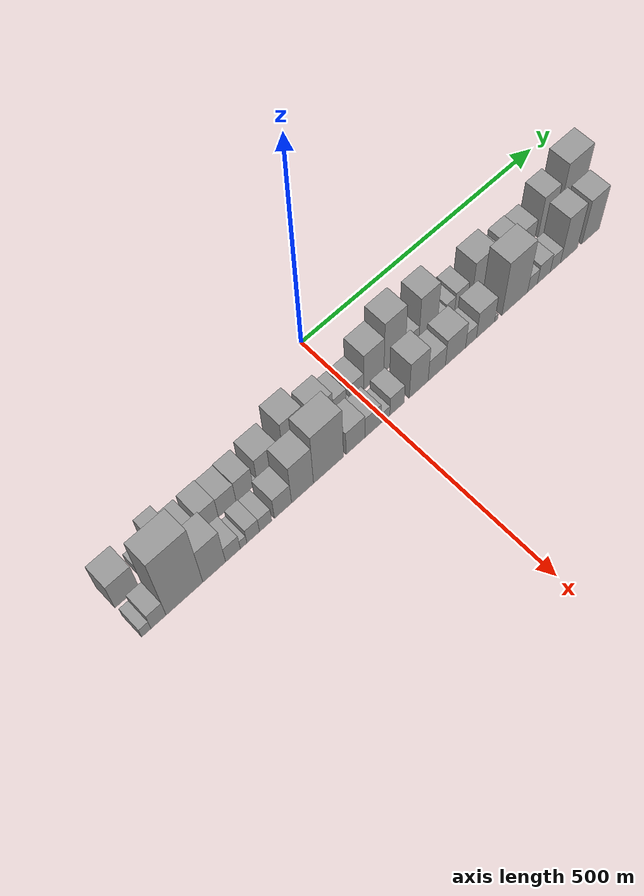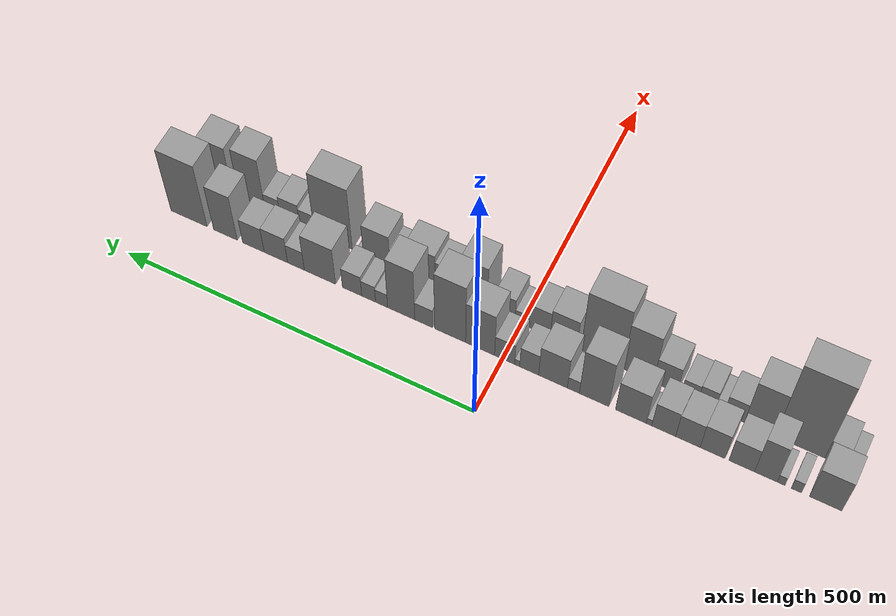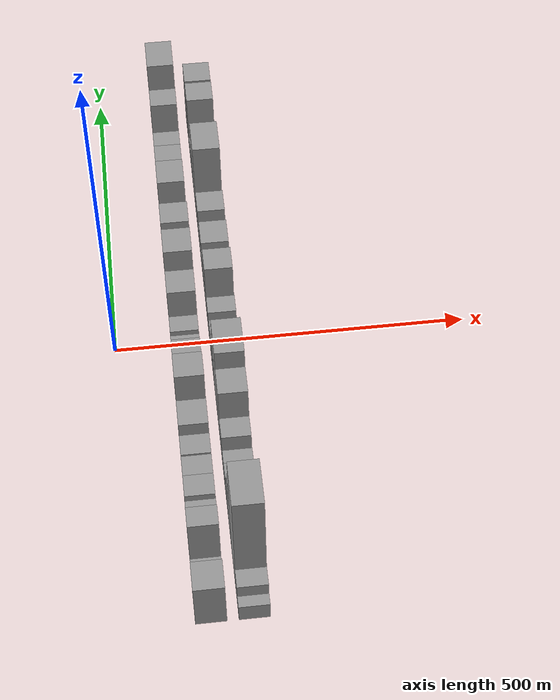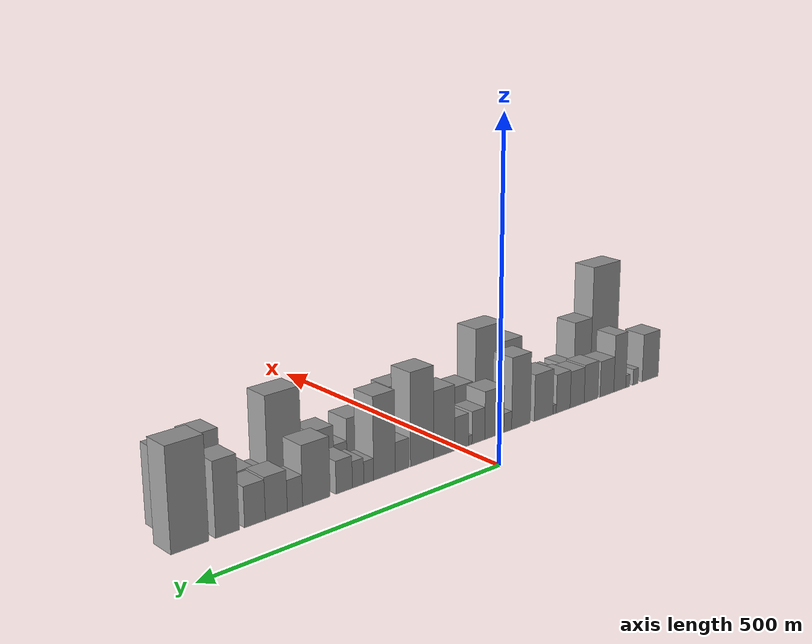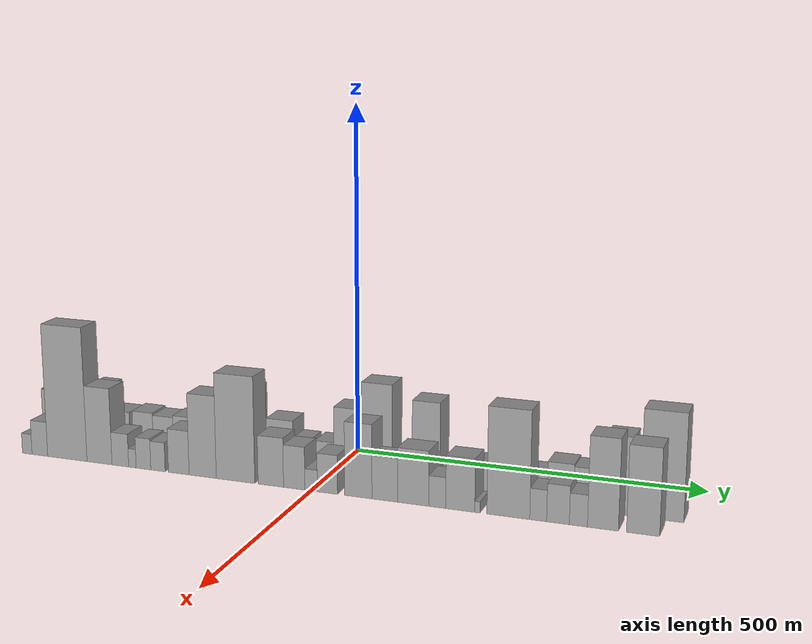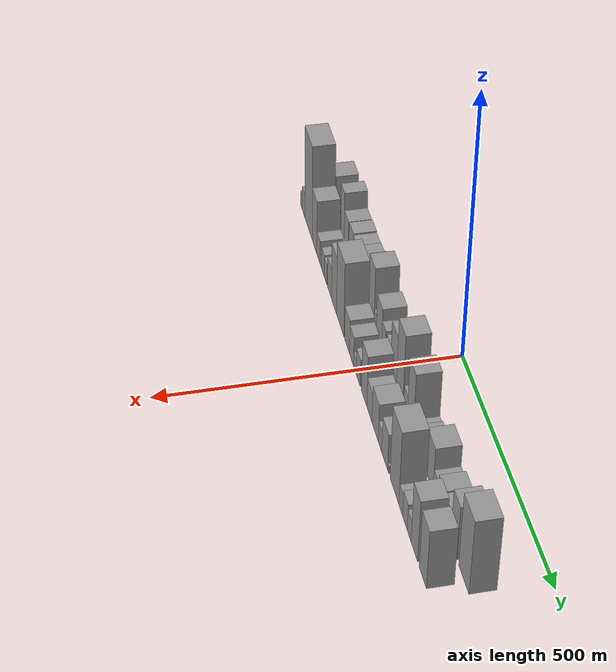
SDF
<sdf version="1.6">
 <world name="default">
  <scene>
   <sky><clouds><speed>12</speed></clouds></sky>
   <ambient>0.4 0.4 0.4 1</ambient>
   <background>0.7 0.7 0.7 1</background>
   <shadows>1</shadows>
  </scene>
  <gravity>0 0 -9.8066</gravity>
  <magnetic_field>6e-06 2.3e-05 -4.2e-05</magnetic_field>
  <physics default="0" name="default_physics" type="ode">
   <ode>
    <solver>
     <type>quick</type>
     <iters>10</iters>
     <sor>1.0</sor>
     <use_dynamic_moi_rescaling>0</use_dynamic_moi_rescaling>
    </solver>
    <constraints>
     <cfm>0</cfm>
     <erp>0.2</erp>
     <contact_max_correcting_vel>100</contact_max_correcting_vel>
     <contact_surface_layer>0.001</contact_surface_layer>
    </constraints>
   </ode>
   <max_step_size>0.004</max_step_size>
   <real_time_factor>1</real_time_factor>
   <real_time_update_rate>250</real_time_update_rate>
  </physics>
  <light name="sun" type="directional">
   <pose>0 0 10 0 0 0</pose>
   <diffuse>0.8 0.8 0.8 1</diffuse>
   <specular>0.2 0.2 0.2 1</specular>
   <attenuation>
    <range>1000</range>
    <constant>0.9</constant>
    <linear>0.01</linear>
    <quadratic>0.001</quadratic>
   </attenuation>
   <direction>-0.5 0.1 -0.9</direction>
  </light>
  <model name="building_1">
   <static>1</static>
   <pose>100.0000 -429.3732 0 0.000000 0.000000 0.000000</pose>
   <link name="link">
    <pose>0 0 40.50 0 0 0</pose>
    <collision name="collision"><geometry><box><size>40.0000 41.2535 81.0000</size></box></geometry></collision>
    <visual name="visual">
     <cast_shadows>0</cast_shadows>
     <geometry><box><size>40.0000 41.2535 81.0000</size></box></geometry>
     <material>
      <script>
       <uri>model://grey_wall/materials/scripts</uri>
       <uri>model://grey_wall/materials/textures</uri>
       <name>vrc/grey_wall</name>
      </script>
     </material>
    </visual>
   </link>
  </model>
  <model name="building_2">
   <static>1</static>
   <pose>100.0000 -392.1876 0 0.000000 0.000000 0.000000</pose>
   <link name="link">
    <pose>0 0 13.50 0 0 0</pose>
    <collision name="collision"><geometry><box><size>40.0000 13.1177 27.0000</size></box></geometry></collision>
    <visual name="visual">
     <cast_shadows>0</cast_shadows>
     <geometry><box><size>40.0000 13.1177 27.0000</size></box></geometry>
     <material>
      <script>
       <uri>model://grey_wall/materials/scripts</uri>
       <uri>model://grey_wall/materials/textures</uri>
       <name>vrc/grey_wall</name>
      </script>
     </material>
    </visual>
   </link>
  </model>
  <model name="building_3">
   <static>1</static>
   <pose>100.0000 -372.6720 0 0.000000 0.000000 0.000000</pose>
   <link name="link">
    <pose>0 0 10.50 0 0 0</pose>
    <collision name="collision"><geometry><box><size>40.0000 9.9136 21.0000</size></box></geometry></collision>
    <visual name="visual">
     <cast_shadows>0</cast_shadows>
     <geometry><box><size>40.0000 9.9136 21.0000</size></box></geometry>
     <material>
      <script>
       <uri>model://grey_wall/materials/scripts</uri>
       <uri>model://grey_wall/materials/textures</uri>
       <name>vrc/grey_wall</name>
      </script>
     </material>
    </visual>
   </link>
  </model>
  <model name="building_4">
   <static>1</static>
   <pose>100.0000 -352.9878 0 0.000000 0.000000 0.000000</pose>
   <link name="link">
    <pose>0 0 48.00 0 0 0</pose>
    <collision name="collision"><geometry><box><size>40.0000 29.4547 96.0000</size></box></geometry></collision>
    <visual name="visual">
     <cast_shadows>0</cast_shadows>
     <geometry><box><size>40.0000 29.4547 96.0000</size></box></geometry>
     <material>
      <script>
       <uri>model://grey_wall/materials/scripts</uri>
       <uri>model://grey_wall/materials/textures</uri>
       <name>vrc/grey_wall</name>
      </script>
     </material>
    </visual>
   </link>
  </model>
  <model name="building_5">
   <static>1</static>
   <pose>100.0000 -321.6236 0 0.000000 0.000000 0.000000</pose>
   <link name="link">
    <pose>0 0 30.00 0 0 0</pose>
    <collision name="collision"><geometry><box><size>40.0000 33.2737 60.0000</size></box></geometry></collision>
    <visual name="visual">
     <cast_shadows>0</cast_shadows>
     <geometry><box><size>40.0000 33.2737 60.0000</size></box></geometry>
     <material>
      <script>
       <uri>model://grey_wall/materials/scripts</uri>
       <uri>model://grey_wall/materials/textures</uri>
       <name>vrc/grey_wall</name>
      </script>
     </material>
    </visual>
   </link>
  </model>
  <model name="building_6">
   <static>1</static>
   <pose>100.0000 -283.7098 0 0.000000 0.000000 0.000000</pose>
   <link name="link">
    <pose>0 0 31.50 0 0 0</pose>
    <collision name="collision"><geometry><box><size>40.0000 32.5539 63.0000</size></box></geometry></collision>
    <visual name="visual">
     <cast_shadows>0</cast_shadows>
     <geometry><box><size>40.0000 32.5539 63.0000</size></box></geometry>
     <material>
      <script>
       <uri>model://grey_wall/materials/scripts</uri>
       <uri>model://grey_wall/materials/textures</uri>
       <name>vrc/grey_wall</name>
      </script>
     </material>
    </visual>
   </link>
  </model>
  <model name="building_7">
   <static>1</static>
   <pose>100.0000 -251.2502 0 0.000000 0.000000 0.000000</pose>
   <link name="link">
    <pose>0 0 30.00 0 0 0</pose>
    <collision name="collision"><geometry><box><size>40.0000 32.3653 60.0000</size></box></geometry></collision>
    <visual name="visual">
     <cast_shadows>0</cast_shadows>
     <geometry><box><size>40.0000 32.3653 60.0000</size></box></geometry>
     <material>
      <script>
       <uri>model://grey_wall/materials/scripts</uri>
       <uri>model://grey_wall/materials/textures</uri>
       <name>vrc/grey_wall</name>
      </script>
     </material>
    </visual>
   </link>
  </model>
  <model name="building_8">
   <static>1</static>
   <pose>100.0000 -219.2481 0 0.000000 0.000000 0.000000</pose>
   <link name="link">
    <pose>0 0 31.50 0 0 0</pose>
    <collision name="collision"><geometry><box><size>40.0000 31.6390 63.0000</size></box></geometry></collision>
    <visual name="visual">
     <cast_shadows>0</cast_shadows>
     <geometry><box><size>40.0000 31.6390 63.0000</size></box></geometry>
     <material>
      <script>
       <uri>model://grey_wall/materials/scripts</uri>
       <uri>model://grey_wall/materials/textures</uri>
       <name>vrc/grey_wall</name>
      </script>
     </material>
    </visual>
   </link>
  </model>
  <model name="building_9">
   <static>1</static>
   <pose>100.0000 -199.6931 0 0.000000 0.000000 0.000000</pose>
   <link name="link">
    <pose>0 0 7.50 0 0 0</pose>
    <collision name="collision"><geometry><box><size>40.0000 7.4711 15.0000</size></box></geometry></collision>
    <visual name="visual">
     <cast_shadows>0</cast_shadows>
     <geometry><box><size>40.0000 7.4711 15.0000</size></box></geometry>
     <material>
      <script>
       <uri>model://grey_wall/materials/scripts</uri>
       <uri>model://grey_wall/materials/textures</uri>
       <name>vrc/grey_wall</name>
      </script>
     </material>
    </visual>
   </link>
  </model>
  <model name="building_10">
   <static>1</static>
   <pose>100.0000 -175.4434 0 0.000000 0.000000 0.000000</pose>
   <link name="link">
    <pose>0 0 37.50 0 0 0</pose>
    <collision name="collision"><geometry><box><size>40.0000 41.0281 75.0000</size></box></geometry></collision>
    <visual name="visual">
     <cast_shadows>0</cast_shadows>
     <geometry><box><size>40.0000 41.0281 75.0000</size></box></geometry>
     <material>
      <script>
       <uri>model://grey_wall/materials/scripts</uri>
       <uri>model://grey_wall/materials/textures</uri>
       <name>vrc/grey_wall</name>
      </script>
     </material>
    </visual>
   </link>
  </model>
  <model name="building_11">
   <static>1</static>
   <pose>100.0000 -125.9184 0 0.000000 0.000000 0.000000</pose>
   <link name="link">
    <pose>0 0 57.00 0 0 0</pose>
    <collision name="collision"><geometry><box><size>40.0000 40.0219 114.0000</size></box></geometry></collision>
    <visual name="visual">
     <cast_shadows>0</cast_shadows>
     <geometry><box><size>40.0000 40.0219 114.0000</size></box></geometry>
     <material>
      <script>
       <uri>model://grey_wall/materials/scripts</uri>
       <uri>model://grey_wall/materials/textures</uri>
       <name>vrc/grey_wall</name>
      </script>
     </material>
    </visual>
   </link>
  </model>
  <model name="building_12">
   <static>1</static>
   <pose>100.0000 -97.7523 0 0.000000 0.000000 0.000000</pose>
   <link name="link">
    <pose>0 0 15.00 0 0 0</pose>
    <collision name="collision"><geometry><box><size>40.0000 16.3104 30.0000</size></box></geometry></collision>
    <visual name="visual">
     <cast_shadows>0</cast_shadows>
     <geometry><box><size>40.0000 16.3104 30.0000</size></box></geometry>
     <material>
      <script>
       <uri>model://grey_wall/materials/scripts</uri>
       <uri>model://grey_wall/materials/textures</uri>
       <name>vrc/grey_wall</name>
      </script>
     </material>
    </visual>
   </link>
  </model>
  <model name="building_13">
   <static>1</static>
   <pose>100.0000 -69.8702 0 0.000000 0.000000 0.000000</pose>
   <link name="link">
    <pose>0 0 37.50 0 0 0</pose>
    <collision name="collision"><geometry><box><size>40.0000 39.4537 75.0000</size></box></geometry></collision>
    <visual name="visual">
     <cast_shadows>0</cast_shadows>
     <geometry><box><size>40.0000 39.4537 75.0000</size></box></geometry>
     <material>
      <script>
       <uri>model://grey_wall/materials/scripts</uri>
       <uri>model://grey_wall/materials/textures</uri>
       <name>vrc/grey_wall</name>
      </script>
     </material>
    </visual>
   </link>
  </model>
  <model name="building_14">
   <static>1</static>
   <pose>100.0000 -37.0855 0 0.000000 0.000000 0.000000</pose>
   <link name="link">
    <pose>0 0 25.50 0 0 0</pose>
    <collision name="collision"><geometry><box><size>40.0000 26.1157 51.0000</size></box></geometry></collision>
    <visual name="visual">
     <cast_shadows>0</cast_shadows>
     <geometry><box><size>40.0000 26.1157 51.0000</size></box></geometry>
     <material>
      <script>
       <uri>model://grey_wall/materials/scripts</uri>
       <uri>model://grey_wall/materials/textures</uri>
       <name>vrc/grey_wall</name>
      </script>
     </material>
    </visual>
   </link>
  </model>
  <model name="building_15">
   <static>1</static>
   <pose>100.0000 -20.5512 0 0.000000 0.000000 0.000000</pose>
   <link name="link">
    <pose>0 0 7.50 0 0 0</pose>
    <collision name="collision"><geometry><box><size>40.0000 6.9529 15.0000</size></box></geometry></collision>
    <visual name="visual">
     <cast_shadows>0</cast_shadows>
     <geometry><box><size>40.0000 6.9529 15.0000</size></box></geometry>
     <material>
      <script>
       <uri>model://grey_wall/materials/scripts</uri>
       <uri>model://grey_wall/materials/textures</uri>
       <name>vrc/grey_wall</name>
      </script>
     </material>
    </visual>
   </link>
  </model>
  <model name="building_16">
   <static>1</static>
   <pose>100.0000 -3.1467 0 0.000000 0.000000 0.000000</pose>
   <link name="link">
    <pose>0 0 25.50 0 0 0</pose>
    <collision name="collision"><geometry><box><size>40.0000 27.8561 51.0000</size></box></geometry></collision>
    <visual name="visual">
     <cast_shadows>0</cast_shadows>
     <geometry><box><size>40.0000 27.8561 51.0000</size></box></geometry>
     <material>
      <script>
       <uri>model://grey_wall/materials/scripts</uri>
       <uri>model://grey_wall/materials/textures</uri>
       <name>vrc/grey_wall</name>
      </script>
     </material>
    </visual>
   </link>
  </model>
  <model name="building_17">
   <static>1</static>
   <pose>100.0000 31.1030 0 0.000000 0.000000 0.000000</pose>
   <link name="link">
    <pose>0 0 51.00 0 0 0</pose>
    <collision name="collision"><geometry><box><size>40.0000 40.6433 102.0000</size></box></geometry></collision>
    <visual name="visual">
     <cast_shadows>0</cast_shadows>
     <geometry><box><size>40.0000 40.6433 102.0000</size></box></geometry>
     <material>
      <script>
       <uri>model://grey_wall/materials/scripts</uri>
       <uri>model://grey_wall/materials/textures</uri>
       <name>vrc/grey_wall</name>
      </script>
     </material>
    </visual>
   </link>
  </model>
  <model name="building_18">
   <static>1</static>
   <pose>100.0000 73.2213 0 0.000000 0.000000 0.000000</pose>
   <link name="link">
    <pose>0 0 70.50 0 0 0</pose>
    <collision name="collision"><geometry><box><size>40.0000 43.5933 141.0000</size></box></geometry></collision>
    <visual name="visual">
     <cast_shadows>0</cast_shadows>
     <geometry><box><size>40.0000 43.5933 141.0000</size></box></geometry>
     <material>
      <script>
       <uri>model://grey_wall/materials/scripts</uri>
       <uri>model://grey_wall/materials/textures</uri>
       <name>vrc/grey_wall</name>
      </script>
     </material>
    </visual>
   </link>
  </model>
  <model name="building_19">
   <static>1</static>
   <pose>100.0000 110.6303 0 0.000000 0.000000 0.000000</pose>
   <link name="link">
    <pose>0 0 22.50 0 0 0</pose>
    <collision name="collision"><geometry><box><size>40.0000 25.2247 45.0000</size></box></geometry></collision>
    <visual name="visual">
     <cast_shadows>0</cast_shadows>
     <geometry><box><size>40.0000 25.2247 45.0000</size></box></geometry>
     <material>
      <script>
       <uri>model://grey_wall/materials/scripts</uri>
       <uri>model://grey_wall/materials/textures</uri>
       <name>vrc/grey_wall</name>
      </script>
     </material>
    </visual>
   </link>
  </model>
  <model name="building_20">
   <static>1</static>
   <pose>100.0000 142.7122 0 0.000000 0.000000 0.000000</pose>
   <link name="link">
    <pose>0 0 61.50 0 0 0</pose>
    <collision name="collision"><geometry><box><size>40.0000 38.9389 123.0000</size></box></geometry></collision>
    <visual name="visual">
     <cast_shadows>0</cast_shadows>
     <geometry><box><size>40.0000 38.9389 123.0000</size></box></geometry>
     <material>
      <script>
       <uri>model://grey_wall/materials/scripts</uri>
       <uri>model://grey_wall/materials/textures</uri>
       <name>vrc/grey_wall</name>
      </script>
     </material>
    </visual>
   </link>
  </model>
  <model name="building_21">
   <static>1</static>
   <pose>100.0000 170.9257 0 0.000000 0.000000 0.000000</pose>
   <link name="link">
    <pose>0 0 16.50 0 0 0</pose>
    <collision name="collision"><geometry><box><size>40.0000 17.4881 33.0000</size></box></geometry></collision>
    <visual name="visual">
     <cast_shadows>0</cast_shadows>
     <geometry><box><size>40.0000 17.4881 33.0000</size></box></geometry>
     <material>
      <script>
       <uri>model://grey_wall/materials/scripts</uri>
       <uri>model://grey_wall/materials/textures</uri>
       <name>vrc/grey_wall</name>
      </script>
     </material>
    </visual>
   </link>
  </model>
  <model name="building_22">
   <static>1</static>
   <pose>100.0000 189.6198 0 0.000000 0.000000 0.000000</pose>
   <link name="link">
    <pose>0 0 19.50 0 0 0</pose>
    <collision name="collision"><geometry><box><size>40.0000 19.9002 39.0000</size></box></geometry></collision>
    <visual name="visual">
     <cast_shadows>0</cast_shadows>
     <geometry><box><size>40.0000 19.9002 39.0000</size></box></geometry>
     <material>
      <script>
       <uri>model://grey_wall/materials/scripts</uri>
       <uri>model://grey_wall/materials/textures</uri>
       <name>vrc/grey_wall</name>
      </script>
     </material>
    </visual>
   </link>
  </model>
  <model name="building_23">
   <static>1</static>
   <pose>100.0000 213.5774 0 0.000000 0.000000 0.000000</pose>
   <link name="link">
    <pose>0 0 24.00 0 0 0</pose>
    <collision name="collision"><geometry><box><size>40.0000 28.0151 48.0000</size></box></geometry></collision>
    <visual name="visual">
     <cast_shadows>0</cast_shadows>
     <geometry><box><size>40.0000 28.0151 48.0000</size></box></geometry>
     <material>
      <script>
       <uri>model://grey_wall/materials/scripts</uri>
       <uri>model://grey_wall/materials/textures</uri>
       <name>vrc/grey_wall</name>
      </script>
     </material>
    </visual>
   </link>
  </model>
  <model name="building_24">
   <static>1</static>
   <pose>100.0000 260.5220 0 0.000000 0.000000 0.000000</pose>
   <link name="link">
    <pose>0 0 43.50 0 0 0</pose>
    <collision name="collision"><geometry><box><size>40.0000 45.8741 87.0000</size></box></geometry></collision>
    <visual name="visual">
     <cast_shadows>0</cast_shadows>
     <geometry><box><size>40.0000 45.8741 87.0000</size></box></geometry>
     <material>
      <script>
       <uri>model://grey_wall/materials/scripts</uri>
       <uri>model://grey_wall/materials/textures</uri>
       <name>vrc/grey_wall</name>
      </script>
     </material>
    </visual>
   </link>
  </model>
  <model name="building_25">
   <static>1</static>
   <pose>100.0000 295.8806 0 0.000000 0.000000 0.000000</pose>
   <link name="link">
    <pose>0 0 22.50 0 0 0</pose>
    <collision name="collision"><geometry><box><size>40.0000 24.8430 45.0000</size></box></geometry></collision>
    <visual name="visual">
     <cast_shadows>0</cast_shadows>
     <geometry><box><size>40.0000 24.8430 45.0000</size></box></geometry>
     <material>
      <script>
       <uri>model://grey_wall/materials/scripts</uri>
       <uri>model://grey_wall/materials/textures</uri>
       <name>vrc/grey_wall</name>
      </script>
     </material>
    </visual>
   </link>
  </model>
  <model name="building_26">
   <static>1</static>
   <pose>100.0000 325.6973 0 0.000000 0.000000 0.000000</pose>
   <link name="link">
    <pose>0 0 30.00 0 0 0</pose>
    <collision name="collision"><geometry><box><size>40.0000 34.7904 60.0000</size></box></geometry></collision>
    <visual name="visual">
     <cast_shadows>0</cast_shadows>
     <geometry><box><size>40.0000 34.7904 60.0000</size></box></geometry>
     <material>
      <script>
       <uri>model://grey_wall/materials/scripts</uri>
       <uri>model://grey_wall/materials/textures</uri>
       <name>vrc/grey_wall</name>
      </script>
     </material>
    </visual>
   </link>
  </model>
  <model name="building_27">
   <static>1</static>
   <pose>100.0000 359.2115 0 0.000000 0.000000 0.000000</pose>
   <link name="link">
    <pose>0 0 28.50 0 0 0</pose>
    <collision name="collision"><geometry><box><size>40.0000 32.2380 57.0000</size></box></geometry></collision>
    <visual name="visual">
     <cast_shadows>0</cast_shadows>
     <geometry><box><size>40.0000 32.2380 57.0000</size></box></geometry>
     <material>
      <script>
       <uri>model://grey_wall/materials/scripts</uri>
       <uri>model://grey_wall/materials/textures</uri>
       <name>vrc/grey_wall</name>
      </script>
     </material>
    </visual>
   </link>
  </model>
  <model name="building_28">
   <static>1</static>
   <pose>100.0000 401.2009 0 0.000000 0.000000 0.000000</pose>
   <link name="link">
    <pose>0 0 52.50 0 0 0</pose>
    <collision name="collision"><geometry><box><size>40.0000 35.7408 105.0000</size></box></geometry></collision>
    <visual name="visual">
     <cast_shadows>0</cast_shadows>
     <geometry><box><size>40.0000 35.7408 105.0000</size></box></geometry>
     <material>
      <script>
       <uri>model://grey_wall/materials/scripts</uri>
       <uri>model://grey_wall/materials/textures</uri>
       <name>vrc/grey_wall</name>
      </script>
     </material>
    </visual>
   </link>
  </model>
  <model name="building_29">
   <static>1</static>
   <pose>100.0000 456.5570 0 0.000000 0.000000 0.000000</pose>
   <link name="link">
    <pose>0 0 72.00 0 0 0</pose>
    <collision name="collision"><geometry><box><size>40.0000 54.9713 144.0000</size></box></geometry></collision>
    <visual name="visual">
     <cast_shadows>0</cast_shadows>
     <geometry><box><size>40.0000 54.9713 144.0000</size></box></geometry>
     <material>
      <script>
       <uri>model://grey_wall/materials/scripts</uri>
       <uri>model://grey_wall/materials/textures</uri>
       <name>vrc/grey_wall</name>
      </script>
     </material>
    </visual>
   </link>
  </model>
  <model name="building_30">
   <static>1</static>
   <pose>155.0000 -441.9894 0 0.000000 0.000000 0.000000</pose>
   <link name="link">
    <pose>0 0 15.00 0 0 0</pose>
    <collision name="collision"><geometry><box><size>40.0000 16.0211 30.0000</size></box></geometry></collision>
    <visual name="visual">
     <cast_shadows>0</cast_shadows>
     <geometry><box><size>40.0000 16.0211 30.0000</size></box></geometry>
     <material>
      <script>
       <uri>model://grey_wall/materials/scripts</uri>
       <uri>model://grey_wall/materials/textures</uri>
       <name>vrc/grey_wall</name>
      </script>
     </material>
    </visual>
   </link>
  </model>
  <model name="building_31">
   <static>1</static>
   <pose>155.0000 -421.0006 0 0.000000 0.000000 0.000000</pose>
   <link name="link">
    <pose>0 0 25.50 0 0 0</pose>
    <collision name="collision"><geometry><box><size>40.0000 25.9566 51.0000</size></box></geometry></collision>
    <visual name="visual">
     <cast_shadows>0</cast_shadows>
     <geometry><box><size>40.0000 25.9566 51.0000</size></box></geometry>
     <material>
      <script>
       <uri>model://grey_wall/materials/scripts</uri>
       <uri>model://grey_wall/materials/textures</uri>
       <name>vrc/grey_wall</name>
      </script>
     </material>
    </visual>
   </link>
  </model>
  <model name="building_32">
   <static>1</static>
   <pose>155.0000 -375.7685 0 0.000000 0.000000 0.000000</pose>
   <link name="link">
    <pose>0 0 97.50 0 0 0</pose>
    <collision name="collision"><geometry><box><size>40.0000 64.5076 195.0000</size></box></geometry></collision>
    <visual name="visual">
     <cast_shadows>0</cast_shadows>
     <geometry><box><size>40.0000 64.5076 195.0000</size></box></geometry>
     <material>
      <script>
       <uri>model://grey_wall/materials/scripts</uri>
       <uri>model://grey_wall/materials/textures</uri>
       <name>vrc/grey_wall</name>
      </script>
     </material>
    </visual>
   </link>
  </model>
  <model name="building_33">
   <static>1</static>
   <pose>155.0000 -323.3387 0 0.000000 0.000000 0.000000</pose>
   <link name="link">
    <pose>0 0 55.50 0 0 0</pose>
    <collision name="collision"><geometry><box><size>40.0000 40.3519 111.0000</size></box></geometry></collision>
    <visual name="visual">
     <cast_shadows>0</cast_shadows>
     <geometry><box><size>40.0000 40.3519 111.0000</size></box></geometry>
     <material>
      <script>
       <uri>model://grey_wall/materials/scripts</uri>
       <uri>model://grey_wall/materials/textures</uri>
       <name>vrc/grey_wall</name>
      </script>
     </material>
    </visual>
   </link>
  </model>
  <model name="building_34">
   <static>1</static>
   <pose>155.0000 -289.8574 0 0.000000 0.000000 0.000000</pose>
   <link name="link">
    <pose>0 0 24.00 0 0 0</pose>
    <collision name="collision"><geometry><box><size>40.0000 26.6108 48.0000</size></box></geometry></collision>
    <visual name="visual">
     <cast_shadows>0</cast_shadows>
     <geometry><box><size>40.0000 26.6108 48.0000</size></box></geometry>
     <material>
      <script>
       <uri>model://grey_wall/materials/scripts</uri>
       <uri>model://grey_wall/materials/textures</uri>
       <name>vrc/grey_wall</name>
      </script>
     </material>
    </visual>
   </link>
  </model>
  <model name="building_35">
   <static>1</static>
   <pose>155.0000 -270.6579 0 0.000000 0.000000 0.000000</pose>
   <link name="link">
    <pose>0 0 13.50 0 0 0</pose>
    <collision name="collision"><geometry><box><size>40.0000 11.7881 27.0000</size></box></geometry></collision>
    <visual name="visual">
     <cast_shadows>0</cast_shadows>
     <geometry><box><size>40.0000 11.7881 27.0000</size></box></geometry>
     <material>
      <script>
       <uri>model://grey_wall/materials/scripts</uri>
       <uri>model://grey_wall/materials/textures</uri>
       <name>vrc/grey_wall</name>
      </script>
     </material>
    </visual>
   </link>
  </model>
  <model name="building_36">
   <static>1</static>
   <pose>155.0000 -253.2008 0 0.000000 0.000000 0.000000</pose>
   <link name="link">
    <pose>0 0 22.50 0 0 0</pose>
    <collision name="collision"><geometry><box><size>40.0000 23.1262 45.0000</size></box></geometry></collision>
    <visual name="visual">
     <cast_shadows>0</cast_shadows>
     <geometry><box><size>40.0000 23.1262 45.0000</size></box></geometry>
     <material>
      <script>
       <uri>model://grey_wall/materials/scripts</uri>
       <uri>model://grey_wall/materials/textures</uri>
       <name>vrc/grey_wall</name>
      </script>
     </material>
    </visual>
   </link>
  </model>
  <model name="building_37">
   <static>1</static>
   <pose>155.0000 -230.3536 0 0.000000 0.000000 0.000000</pose>
   <link name="link">
    <pose>0 0 21.00 0 0 0</pose>
    <collision name="collision"><geometry><box><size>40.0000 22.5682 42.0000</size></box></geometry></collision>
    <visual name="visual">
     <cast_shadows>0</cast_shadows>
     <geometry><box><size>40.0000 22.5682 42.0000</size></box></geometry>
     <material>
      <script>
       <uri>model://grey_wall/materials/scripts</uri>
       <uri>model://grey_wall/materials/textures</uri>
       <name>vrc/grey_wall</name>
      </script>
     </material>
    </visual>
   </link>
  </model>
  <model name="building_38">
   <static>1</static>
   <pose>155.0000 -198.0576 0 0.000000 0.000000 0.000000</pose>
   <link name="link">
    <pose>0 0 31.50 0 0 0</pose>
    <collision name="collision"><geometry><box><size>40.0000 32.0238 63.0000</size></box></geometry></collision>
    <visual name="visual">
     <cast_shadows>0</cast_shadows>
     <geometry><box><size>40.0000 32.0238 63.0000</size></box></geometry>
     <material>
      <script>
       <uri>model://grey_wall/materials/scripts</uri>
       <uri>model://grey_wall/materials/textures</uri>
       <name>vrc/grey_wall</name>
      </script>
     </material>
    </visual>
   </link>
  </model>
  <model name="building_39">
   <static>1</static>
   <pose>155.0000 -161.3333 0 0.000000 0.000000 0.000000</pose>
   <link name="link">
    <pose>0 0 58.50 0 0 0</pose>
    <collision name="collision"><geometry><box><size>40.0000 41.4246 117.0000</size></box></geometry></collision>
    <visual name="visual">
     <cast_shadows>0</cast_shadows>
     <geometry><box><size>40.0000 41.4246 117.0000</size></box></geometry>
     <material>
      <script>
       <uri>model://grey_wall/materials/scripts</uri>
       <uri>model://grey_wall/materials/textures</uri>
       <name>vrc/grey_wall</name>
      </script>
     </material>
    </visual>
   </link>
  </model>
  <model name="building_40">
   <static>1</static>
   <pose>155.0000 -111.7166 0 0.000000 0.000000 0.000000</pose>
   <link name="link">
    <pose>0 0 75.00 0 0 0</pose>
    <collision name="collision"><geometry><box><size>40.0000 57.8089 150.0000</size></box></geometry></collision>
    <visual name="visual">
     <cast_shadows>0</cast_shadows>
     <geometry><box><size>40.0000 57.8089 150.0000</size></box></geometry>
     <material>
      <script>
       <uri>model://grey_wall/materials/scripts</uri>
       <uri>model://grey_wall/materials/textures</uri>
       <name>vrc/grey_wall</name>
      </script>
     </material>
    </visual>
   </link>
  </model>
  <model name="building_41">
   <static>1</static>
   <pose>155.0000 -59.1026 0 0.000000 0.000000 0.000000</pose>
   <link name="link">
    <pose>0 0 34.50 0 0 0</pose>
    <collision name="collision"><geometry><box><size>40.0000 37.4190 69.0000</size></box></geometry></collision>
    <visual name="visual">
     <cast_shadows>0</cast_shadows>
     <geometry><box><size>40.0000 37.4190 69.0000</size></box></geometry>
     <material>
      <script>
       <uri>model://grey_wall/materials/scripts</uri>
       <uri>model://grey_wall/materials/textures</uri>
       <name>vrc/grey_wall</name>
      </script>
     </material>
    </visual>
   </link>
  </model>
  <model name="building_42">
   <static>1</static>
   <pose>155.0000 -24.8432 0 0.000000 0.000000 0.000000</pose>
   <link name="link">
    <pose>0 0 30.00 0 0 0</pose>
    <collision name="collision"><geometry><box><size>40.0000 31.0998 60.0000</size></box></geometry></collision>
    <visual name="visual">
     <cast_shadows>0</cast_shadows>
     <geometry><box><size>40.0000 31.0998 60.0000</size></box></geometry>
     <material>
      <script>
       <uri>model://grey_wall/materials/scripts</uri>
       <uri>model://grey_wall/materials/textures</uri>
       <name>vrc/grey_wall</name>
      </script>
     </material>
    </visual>
   </link>
  </model>
  <model name="building_43">
   <static>1</static>
   <pose>155.0000 -0.2986 0 0.000000 0.000000 0.000000</pose>
   <link name="link">
    <pose>0 0 15.00 0 0 0</pose>
    <collision name="collision"><geometry><box><size>40.0000 17.9894 30.0000</size></box></geometry></collision>
    <visual name="visual">
     <cast_shadows>0</cast_shadows>
     <geometry><box><size>40.0000 17.9894 30.0000</size></box></geometry>
     <material>
      <script>
       <uri>model://grey_wall/materials/scripts</uri>
       <uri>model://grey_wall/materials/textures</uri>
       <name>vrc/grey_wall</name>
      </script>
     </material>
    </visual>
   </link>
  </model>
  <model name="building_44">
   <static>1</static>
   <pose>155.0000 23.2280 0 0.000000 0.000000 0.000000</pose>
   <link name="link">
    <pose>0 0 27.00 0 0 0</pose>
    <collision name="collision"><geometry><box><size>40.0000 29.0637 54.0000</size></box></geometry></collision>
    <visual name="visual">
     <cast_shadows>0</cast_shadows>
     <geometry><box><size>40.0000 29.0637 54.0000</size></box></geometry>
     <material>
      <script>
       <uri>model://grey_wall/materials/scripts</uri>
       <uri>model://grey_wall/materials/textures</uri>
       <name>vrc/grey_wall</name>
      </script>
     </material>
    </visual>
   </link>
  </model>
  <model name="building_45">
   <static>1</static>
   <pose>155.0000 67.0494 0 0.000000 0.000000 0.000000</pose>
   <link name="link">
    <pose>0 0 51.00 0 0 0</pose>
    <collision name="collision"><geometry><box><size>40.0000 38.5792 102.0000</size></box></geometry></collision>
    <visual name="visual">
     <cast_shadows>0</cast_shadows>
     <geometry><box><size>40.0000 38.5792 102.0000</size></box></geometry>
     <material>
      <script>
       <uri>model://grey_wall/materials/scripts</uri>
       <uri>model://grey_wall/materials/textures</uri>
       <name>vrc/grey_wall</name>
      </script>
     </material>
    </visual>
   </link>
  </model>
  <model name="building_46">
   <static>1</static>
   <pose>155.0000 104.2335 0 0.000000 0.000000 0.000000</pose>
   <link name="link">
    <pose>0 0 30.00 0 0 0</pose>
    <collision name="collision"><geometry><box><size>40.0000 35.7890 60.0000</size></box></geometry></collision>
    <visual name="visual">
     <cast_shadows>0</cast_shadows>
     <geometry><box><size>40.0000 35.7890 60.0000</size></box></geometry>
     <material>
      <script>
       <uri>model://grey_wall/materials/scripts</uri>
       <uri>model://grey_wall/materials/textures</uri>
       <name>vrc/grey_wall</name>
      </script>
     </material>
    </visual>
   </link>
  </model>
  <model name="building_47">
   <static>1</static>
   <pose>155.0000 143.4242 0 0.000000 0.000000 0.000000</pose>
   <link name="link">
    <pose>0 0 37.50 0 0 0</pose>
    <collision name="collision"><geometry><box><size>40.0000 42.5925 75.0000</size></box></geometry></collision>
    <visual name="visual">
     <cast_shadows>0</cast_shadows>
     <geometry><box><size>40.0000 42.5925 75.0000</size></box></geometry>
     <material>
      <script>
       <uri>model://grey_wall/materials/scripts</uri>
       <uri>model://grey_wall/materials/textures</uri>
       <name>vrc/grey_wall</name>
      </script>
     </material>
    </visual>
   </link>
  </model>
  <model name="building_48">
   <static>1</static>
   <pose>155.0000 176.2762 0 0.000000 0.000000 0.000000</pose>
   <link name="link">
    <pose>0 0 21.00 0 0 0</pose>
    <collision name="collision"><geometry><box><size>40.0000 23.1115 42.0000</size></box></geometry></collision>
    <visual name="visual">
     <cast_shadows>0</cast_shadows>
     <geometry><box><size>40.0000 23.1115 42.0000</size></box></geometry>
     <material>
      <script>
       <uri>model://grey_wall/materials/scripts</uri>
       <uri>model://grey_wall/materials/textures</uri>
       <name>vrc/grey_wall</name>
      </script>
     </material>
    </visual>
   </link>
  </model>
  <model name="building_49">
   <static>1</static>
   <pose>155.0000 207.3572 0 0.000000 0.000000 0.000000</pose>
   <link name="link">
    <pose>0 0 36.00 0 0 0</pose>
    <collision name="collision"><geometry><box><size>40.0000 39.0505 72.0000</size></box></geometry></collision>
    <visual name="visual">
     <cast_shadows>0</cast_shadows>
     <geometry><box><size>40.0000 39.0505 72.0000</size></box></geometry>
     <material>
      <script>
       <uri>model://grey_wall/materials/scripts</uri>
       <uri>model://grey_wall/materials/textures</uri>
       <name>vrc/grey_wall</name>
      </script>
     </material>
    </visual>
   </link>
  </model>
  <model name="building_50">
   <static>1</static>
   <pose>155.0000 230.3937 0 0.000000 0.000000 0.000000</pose>
   <link name="link">
    <pose>0 0 7.50 0 0 0</pose>
    <collision name="collision"><geometry><box><size>40.0000 7.0226 15.0000</size></box></geometry></collision>
    <visual name="visual">
     <cast_shadows>0</cast_shadows>
     <geometry><box><size>40.0000 7.0226 15.0000</size></box></geometry>
     <material>
      <script>
       <uri>model://grey_wall/materials/scripts</uri>
       <uri>model://grey_wall/materials/textures</uri>
       <name>vrc/grey_wall</name>
      </script>
     </material>
    </visual>
   </link>
  </model>
  <model name="building_51">
   <static>1</static>
   <pose>155.0000 271.0286 0 0.000000 0.000000 0.000000</pose>
   <link name="link">
    <pose>0 0 72.00 0 0 0</pose>
    <collision name="collision"><geometry><box><size>40.0000 56.2472 144.0000</size></box></geometry></collision>
    <visual name="visual">
     <cast_shadows>0</cast_shadows>
     <geometry><box><size>40.0000 56.2472 144.0000</size></box></geometry>
     <material>
      <script>
       <uri>model://grey_wall/materials/scripts</uri>
       <uri>model://grey_wall/materials/textures</uri>
       <name>vrc/grey_wall</name>
      </script>
     </material>
    </visual>
   </link>
  </model>
  <model name="building_52">
   <static>1</static>
   <pose>155.0000 310.0649 0 0.000000 0.000000 0.000000</pose>
   <link name="link">
    <pose>0 0 21.00 0 0 0</pose>
    <collision name="collision"><geometry><box><size>40.0000 21.8253 42.0000</size></box></geometry></collision>
    <visual name="visual">
     <cast_shadows>0</cast_shadows>
     <geometry><box><size>40.0000 21.8253 42.0000</size></box></geometry>
     <material>
      <script>
       <uri>model://grey_wall/materials/scripts</uri>
       <uri>model://grey_wall/materials/textures</uri>
       <name>vrc/grey_wall</name>
      </script>
     </material>
    </visual>
   </link>
  </model>
  <model name="building_53">
   <static>1</static>
   <pose>155.0000 335.5108 0 0.000000 0.000000 0.000000</pose>
   <link name="link">
    <pose>0 0 25.50 0 0 0</pose>
    <collision name="collision"><geometry><box><size>40.0000 29.0664 51.0000</size></box></geometry></collision>
    <visual name="visual">
     <cast_shadows>0</cast_shadows>
     <geometry><box><size>40.0000 29.0664 51.0000</size></box></geometry>
     <material>
      <script>
       <uri>model://grey_wall/materials/scripts</uri>
       <uri>model://grey_wall/materials/textures</uri>
       <name>vrc/grey_wall</name>
      </script>
     </material>
    </visual>
   </link>
  </model>
  <model name="building_54">
   <static>1</static>
   <pose>155.0000 361.5412 0 0.000000 0.000000 0.000000</pose>
   <link name="link">
    <pose>0 0 21.00 0 0 0</pose>
    <collision name="collision"><geometry><box><size>40.0000 22.9943 42.0000</size></box></geometry></collision>
    <visual name="visual">
     <cast_shadows>0</cast_shadows>
     <geometry><box><size>40.0000 22.9943 42.0000</size></box></geometry>
     <material>
      <script>
       <uri>model://grey_wall/materials/scripts</uri>
       <uri>model://grey_wall/materials/textures</uri>
       <name>vrc/grey_wall</name>
      </script>
     </material>
    </visual>
   </link>
  </model>
  <model name="building_55">
   <static>1</static>
   <pose>155.0000 392.4578 0 0.000000 0.000000 0.000000</pose>
   <link name="link">
    <pose>0 0 60.00 0 0 0</pose>
    <collision name="collision"><geometry><box><size>40.0000 38.8390 120.0000</size></box></geometry></collision>
    <visual name="visual">
     <cast_shadows>0</cast_shadows>
     <geometry><box><size>40.0000 38.8390 120.0000</size></box></geometry>
     <material>
      <script>
       <uri>model://grey_wall/materials/scripts</uri>
       <uri>model://grey_wall/materials/textures</uri>
       <name>vrc/grey_wall</name>
      </script>
     </material>
    </visual>
   </link>
  </model>
  <model name="building_56">
   <static>1</static>
   <pose>155.0000 442.2858 0 0.000000 0.000000 0.000000</pose>
   <link name="link">
    <pose>0 0 57.00 0 0 0</pose>
    <collision name="collision"><geometry><box><size>40.0000 40.8170 114.0000</size></box></geometry></collision>
    <visual name="visual">
     <cast_shadows>0</cast_shadows>
     <geometry><box><size>40.0000 40.8170 114.0000</size></box></geometry>
     <material>
      <script>
       <uri>model://grey_wall/materials/scripts</uri>
       <uri>model://grey_wall/materials/textures</uri>
       <name>vrc/grey_wall</name>
      </script>
     </material>
    </visual>
   </link>
  </model>
 </world>
</sdf>
